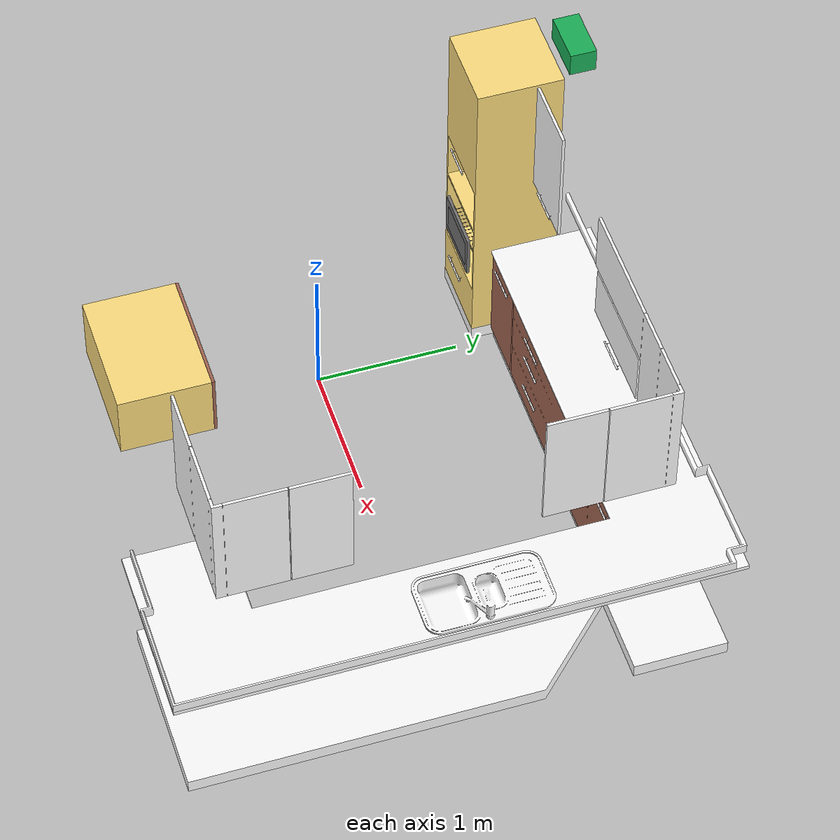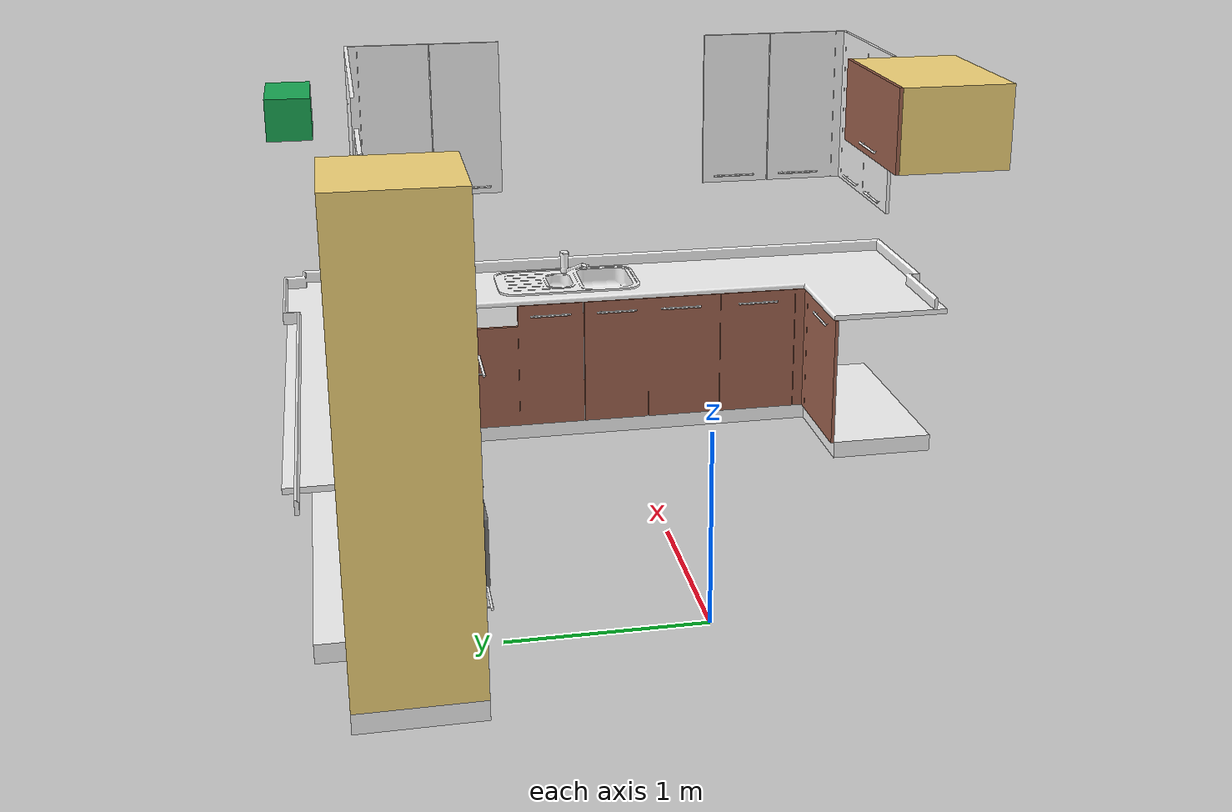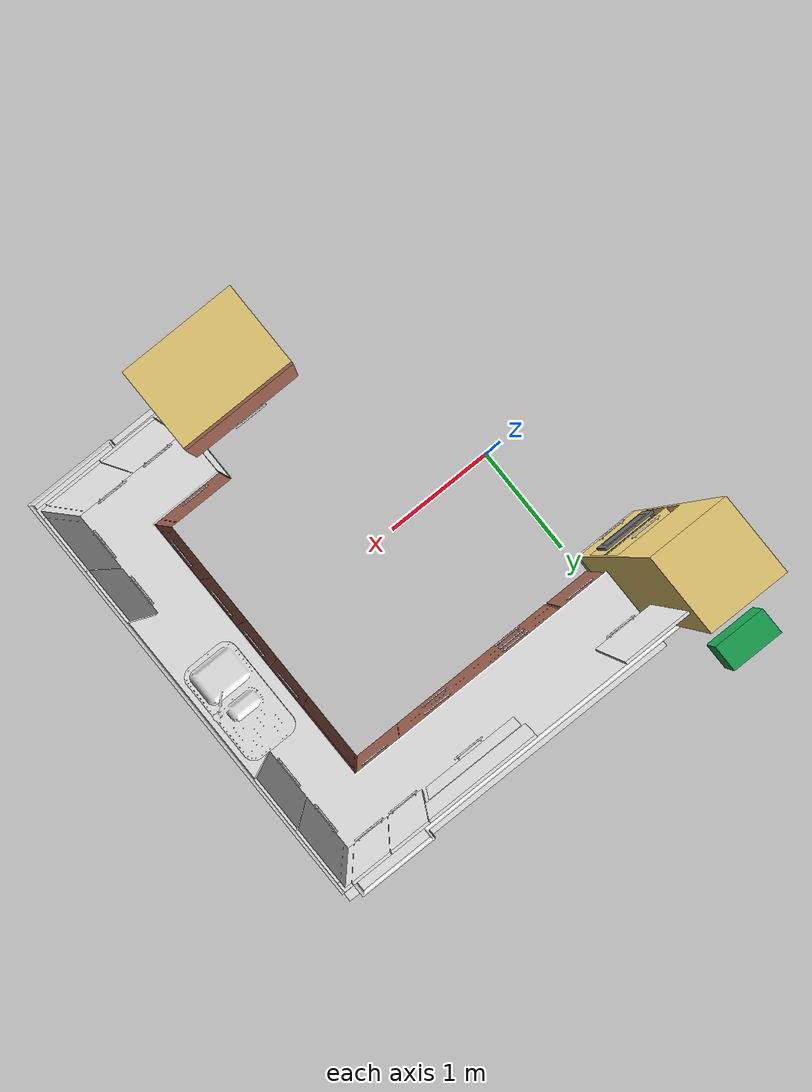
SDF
<sdf version="1.6">
 <world name="default">
  <model name="part114.obj">
   <static>1</static>
   <pose>-12.0 -13.9 0 0 0 0</pose>
   <link name="link_d114">
    <inertial>
     <mass>0</mass>
     <inertia>
      <ixx>0.166667</ixx>
      <ixy>0</ixy>
      <ixz>0</ixz>
      <iyy>0.166667</iyy>
      <iyz>0</iyz>
      <izz>0.166667</izz>
     </inertia>
    </inertial>
    <collision concave="yes" name="collision_114">
     <geometry><mesh><scale>.1 .1 .1</scale><uri>fatihrmutfak/part114.obj</uri></mesh></geometry>
    </collision>
    <visual name="visual">
     <geometry><mesh><scale>.1 .1 .1</scale><uri>fatihrmutfak/part114.obj</uri></mesh></geometry>
     <material>
      <ambient>1 0 0 1</ambient>
      <diffuse>0.647100 0.403900 0.321600 1</diffuse>
      <specular>0.1 0.1 0.1 1</specular>
      <emissive>0 0 0 0</emissive>
     </material>
    </visual>
   </link>
  </model>
  <model name="part115.obj">
   <static>1</static>
   <pose>-12.0 -13.9 0 0 0 0</pose>
   <link name="link_d115">
    <inertial>
     <mass>0</mass>
     <inertia>
      <ixx>0.166667</ixx>
      <ixy>0</ixy>
      <ixz>0</ixz>
      <iyy>0.166667</iyy>
      <iyz>0</iyz>
      <izz>0.166667</izz>
     </inertia>
    </inertial>
    <collision concave="yes" name="collision_115">
     <geometry><mesh><scale>.1 .1 .1</scale><uri>fatihrmutfak/part115.obj</uri></mesh></geometry>
    </collision>
    <visual name="visual">
     <geometry><mesh><scale>.1 .1 .1</scale><uri>fatihrmutfak/part115.obj</uri></mesh></geometry>
     <material>
      <ambient>1 0 0 1</ambient>
      <diffuse>1.000000 1.000000 1.000000 1</diffuse>
      <specular>0.1 0.1 0.1 1</specular>
      <emissive>0 0 0 0</emissive>
     </material>
    </visual>
   </link>
  </model>
  <model name="part116.obj">
   <static>1</static>
   <pose>-12.0 -13.9 0 0 0 0</pose>
   <link name="link_d116">
    <inertial>
     <mass>0</mass>
     <inertia>
      <ixx>0.166667</ixx>
      <ixy>0</ixy>
      <ixz>0</ixz>
      <iyy>0.166667</iyy>
      <iyz>0</iyz>
      <izz>0.166667</izz>
     </inertia>
    </inertial>
    <collision concave="yes" name="collision_116">
     <geometry><mesh><scale>.1 .1 .1</scale><uri>fatihrmutfak/part116.obj</uri></mesh></geometry>
    </collision>
    <visual name="visual">
     <geometry><mesh><scale>.1 .1 .1</scale><uri>fatihrmutfak/part116.obj</uri></mesh></geometry>
     <material>
      <ambient>1 0 0 1</ambient>
      <diffuse>1.000000 0.874500 0.498000 1</diffuse>
      <specular>0.1 0.1 0.1 1</specular>
      <emissive>0 0 0 0</emissive>
     </material>
    </visual>
   </link>
  </model>
  <model name="part117.obj">
   <static>1</static>
   <pose>-12.0 -13.9 0 0 0 0</pose>
   <link name="link_d117">
    <inertial>
     <mass>0</mass>
     <inertia>
      <ixx>0.166667</ixx>
      <ixy>0</ixy>
      <ixz>0</ixz>
      <iyy>0.166667</iyy>
      <iyz>0</iyz>
      <izz>0.166667</izz>
     </inertia>
    </inertial>
    <collision concave="yes" name="collision_117">
     <geometry><mesh><scale>.1 .1 .1</scale><uri>fatihrmutfak/part117.obj</uri></mesh></geometry>
    </collision>
    <visual name="visual">
     <geometry><mesh><scale>.1 .1 .1</scale><uri>fatihrmutfak/part117.obj</uri></mesh></geometry>
     <material>
      <ambient>1 0 0 1</ambient>
      <diffuse>1.000000 1.000000 1.000000 1</diffuse>
      <specular>0.1 0.1 0.1 1</specular>
      <emissive>0 0 0 0</emissive>
     </material>
    </visual>
   </link>
  </model>
  <model name="part118.obj">
   <static>1</static>
   <pose>-12.0 -13.9 0 0 0 0</pose>
   <link name="link_d118">
    <inertial>
     <mass>0</mass>
     <inertia>
      <ixx>0.166667</ixx>
      <ixy>0</ixy>
      <ixz>0</ixz>
      <iyy>0.166667</iyy>
      <iyz>0</iyz>
      <izz>0.166667</izz>
     </inertia>
    </inertial>
    <collision concave="yes" name="collision_118">
     <geometry><mesh><scale>.1 .1 .1</scale><uri>fatihrmutfak/part118.obj</uri></mesh></geometry>
    </collision>
    <visual name="visual">
     <geometry><mesh><scale>.1 .1 .1</scale><uri>fatihrmutfak/part118.obj</uri></mesh></geometry>
     <material>
      <ambient>1 0 0 1</ambient>
      <diffuse>1.000000 1.000000 1.000000 1</diffuse>
      <specular>0.1 0.1 0.1 1</specular>
      <emissive>0 0 0 0</emissive>
     </material>
    </visual>
   </link>
  </model>
  <model name="part119.obj">
   <static>1</static>
   <pose>-12.0 -13.9 0 0 0 0</pose>
   <link name="link_d119">
    <inertial>
     <mass>0</mass>
     <inertia>
      <ixx>0.166667</ixx>
      <ixy>0</ixy>
      <ixz>0</ixz>
      <iyy>0.166667</iyy>
      <iyz>0</iyz>
      <izz>0.166667</izz>
     </inertia>
    </inertial>
    <collision concave="yes" name="collision_119">
     <geometry><mesh><scale>.1 .1 .1</scale><uri>fatihrmutfak/part119.obj</uri></mesh></geometry>
    </collision>
    <visual name="visual">
     <geometry><mesh><scale>.1 .1 .1</scale><uri>fatihrmutfak/part119.obj</uri></mesh></geometry>
     <material>
      <ambient>1 0 0 1</ambient>
      <diffuse>0.647100 0.403900 0.321600 1</diffuse>
      <specular>0.1 0.1 0.1 1</specular>
      <emissive>0 0 0 0</emissive>
     </material>
    </visual>
   </link>
  </model>
  <model name="part120.obj">
   <static>1</static>
   <pose>-12.0 -13.9 0 0 0 0</pose>
   <link name="link_d120">
    <inertial>
     <mass>0</mass>
     <inertia>
      <ixx>0.166667</ixx>
      <ixy>0</ixy>
      <ixz>0</ixz>
      <iyy>0.166667</iyy>
      <iyz>0</iyz>
      <izz>0.166667</izz>
     </inertia>
    </inertial>
    <collision concave="yes" name="collision_120">
     <geometry><mesh><scale>.1 .1 .1</scale><uri>fatihrmutfak/part120.obj</uri></mesh></geometry>
    </collision>
    <visual name="visual">
     <geometry><mesh><scale>.1 .1 .1</scale><uri>fatihrmutfak/part120.obj</uri></mesh></geometry>
     <material>
      <ambient>1 0 0 1</ambient>
      <diffuse>1.000000 1.000000 1.000000 1</diffuse>
      <specular>0.1 0.1 0.1 1</specular>
      <emissive>0 0 0 0</emissive>
     </material>
    </visual>
   </link>
  </model>
  <model name="part121.obj">
   <static>1</static>
   <pose>-12.0 -13.9 0 0 0 0</pose>
   <link name="link_d121">
    <inertial>
     <mass>0</mass>
     <inertia>
      <ixx>0.166667</ixx>
      <ixy>0</ixy>
      <ixz>0</ixz>
      <iyy>0.166667</iyy>
      <iyz>0</iyz>
      <izz>0.166667</izz>
     </inertia>
    </inertial>
    <collision concave="yes" name="collision_121">
     <geometry><mesh><scale>.1 .1 .1</scale><uri>fatihrmutfak/part121.obj</uri></mesh></geometry>
    </collision>
    <visual name="visual">
     <geometry><mesh><scale>.1 .1 .1</scale><uri>fatihrmutfak/part121.obj</uri></mesh></geometry>
     <material>
      <ambient>1 0 0 1</ambient>
      <diffuse>1.000000 1.000000 1.000000 1</diffuse>
      <specular>0.1 0.1 0.1 1</specular>
      <emissive>0 0 0 0</emissive>
     </material>
    </visual>
   </link>
  </model>
  <model name="part122.obj">
   <static>1</static>
   <pose>-12.0 -13.9 0 0 0 0</pose>
   <link name="link_d122">
    <inertial>
     <mass>0</mass>
     <inertia>
      <ixx>0.166667</ixx>
      <ixy>0</ixy>
      <ixz>0</ixz>
      <iyy>0.166667</iyy>
      <iyz>0</iyz>
      <izz>0.166667</izz>
     </inertia>
    </inertial>
    <collision concave="yes" name="collision_122">
     <geometry><mesh><scale>.1 .1 .1</scale><uri>fatihrmutfak/part122.obj</uri></mesh></geometry>
    </collision>
    <visual name="visual">
     <geometry><mesh><scale>.1 .1 .1</scale><uri>fatihrmutfak/part122.obj</uri></mesh></geometry>
     <material>
      <ambient>1 0 0 1</ambient>
      <diffuse>1.000000 1.000000 1.000000 1</diffuse>
      <specular>0.1 0.1 0.1 1</specular>
      <emissive>0 0 0 0</emissive>
     </material>
    </visual>
   </link>
  </model>
  <model name="part123.obj">
   <static>1</static>
   <pose>-12.0 -13.9 0 0 0 0</pose>
   <link name="link_d123">
    <inertial>
     <mass>0</mass>
     <inertia>
      <ixx>0.166667</ixx>
      <ixy>0</ixy>
      <ixz>0</ixz>
      <iyy>0.166667</iyy>
      <iyz>0</iyz>
      <izz>0.166667</izz>
     </inertia>
    </inertial>
    <collision concave="yes" name="collision_123">
     <geometry><mesh><scale>.1 .1 .1</scale><uri>fatihrmutfak/part123.obj</uri></mesh></geometry>
    </collision>
    <visual name="visual">
     <geometry><mesh><scale>.1 .1 .1</scale><uri>fatihrmutfak/part123.obj</uri></mesh></geometry>
     <material>
      <ambient>1 0 0 1</ambient>
      <diffuse>1.000000 1.000000 1.000000 1</diffuse>
      <specular>0.1 0.1 0.1 1</specular>
      <emissive>0 0 0 0</emissive>
     </material>
    </visual>
   </link>
  </model>
  <model name="part124.obj">
   <static>1</static>
   <pose>-12.0 -13.9 0 0 0 0</pose>
   <link name="link_d124">
    <inertial>
     <mass>0</mass>
     <inertia>
      <ixx>0.166667</ixx>
      <ixy>0</ixy>
      <ixz>0</ixz>
      <iyy>0.166667</iyy>
      <iyz>0</iyz>
      <izz>0.166667</izz>
     </inertia>
    </inertial>
    <collision concave="yes" name="collision_124">
     <geometry><mesh><scale>.1 .1 .1</scale><uri>fatihrmutfak/part124.obj</uri></mesh></geometry>
    </collision>
    <visual name="visual">
     <geometry><mesh><scale>.1 .1 .1</scale><uri>fatihrmutfak/part124.obj</uri></mesh></geometry>
     <material>
      <ambient>1 0 0 1</ambient>
      <diffuse>1.000000 1.000000 1.000000 1</diffuse>
      <specular>0.1 0.1 0.1 1</specular>
      <emissive>0 0 0 0</emissive>
     </material>
    </visual>
   </link>
  </model>
  <model name="part125.obj">
   <static>1</static>
   <pose>-12.0 -13.9 0 0 0 0</pose>
   <link name="link_d125">
    <inertial>
     <mass>0</mass>
     <inertia>
      <ixx>0.166667</ixx>
      <ixy>0</ixy>
      <ixz>0</ixz>
      <iyy>0.166667</iyy>
      <iyz>0</iyz>
      <izz>0.166667</izz>
     </inertia>
    </inertial>
    <collision concave="yes" name="collision_125">
     <geometry><mesh><scale>.1 .1 .1</scale><uri>fatihrmutfak/part125.obj</uri></mesh></geometry>
    </collision>
    <visual name="visual">
     <geometry><mesh><scale>.1 .1 .1</scale><uri>fatihrmutfak/part125.obj</uri></mesh></geometry>
     <material>
      <ambient>1 0 0 1</ambient>
      <diffuse>0.102000 0.694100 0.345100 1</diffuse>
      <specular>0.1 0.1 0.1 1</specular>
      <emissive>0 0 0 0</emissive>
     </material>
    </visual>
   </link>
  </model>
  <model name="part126.obj">
   <static>1</static>
   <pose>-12.0 -13.9 0 0 0 0</pose>
   <link name="link_d126">
    <inertial>
     <mass>0</mass>
     <inertia>
      <ixx>0.166667</ixx>
      <ixy>0</ixy>
      <ixz>0</ixz>
      <iyy>0.166667</iyy>
      <iyz>0</iyz>
      <izz>0.166667</izz>
     </inertia>
    </inertial>
    <collision concave="yes" name="collision_126">
     <geometry><mesh><scale>.1 .1 .1</scale><uri>fatihrmutfak/part126.obj</uri></mesh></geometry>
    </collision>
    <visual name="visual">
     <geometry><mesh><scale>.1 .1 .1</scale><uri>fatihrmutfak/part126.obj</uri></mesh></geometry>
     <material>
      <ambient>1 0 0 1</ambient>
      <diffuse>0.451000 0.451000 0.451000 1</diffuse>
      <specular>0.1 0.1 0.1 1</specular>
      <emissive>0 0 0 0</emissive>
     </material>
    </visual>
   </link>
  </model>
  <model name="part127.obj">
   <static>1</static>
   <pose>-12.0 -13.9 0 0 0 0</pose>
   <link name="link_d127">
    <inertial>
     <mass>0</mass>
     <inertia>
      <ixx>0.166667</ixx>
      <ixy>0</ixy>
      <ixz>0</ixz>
      <iyy>0.166667</iyy>
      <iyz>0</iyz>
      <izz>0.166667</izz>
     </inertia>
    </inertial>
    <collision concave="yes" name="collision_127">
     <geometry><mesh><scale>.1 .1 .1</scale><uri>fatihrmutfak/part127.obj</uri></mesh></geometry>
    </collision>
    <visual name="visual">
     <geometry><mesh><scale>.1 .1 .1</scale><uri>fatihrmutfak/part127.obj</uri></mesh></geometry>
     <material>
      <ambient>1 0 0 1</ambient>
      <diffuse>0.451000 0.451000 0.451000 1</diffuse>
      <specular>0.1 0.1 0.1 1</specular>
      <emissive>0 0 0 0</emissive>
     </material>
    </visual>
   </link>
  </model>
  <model name="part128.obj">
   <static>1</static>
   <pose>-12.0 -13.9 0 0 0 0</pose>
   <link name="link_d128">
    <inertial>
     <mass>0</mass>
     <inertia>
      <ixx>0.166667</ixx>
      <ixy>0</ixy>
      <ixz>0</ixz>
      <iyy>0.166667</iyy>
      <iyz>0</iyz>
      <izz>0.166667</izz>
     </inertia>
    </inertial>
    <collision concave="yes" name="collision_128">
     <geometry><mesh><scale>.1 .1 .1</scale><uri>fatihrmutfak/part128.obj</uri></mesh></geometry>
    </collision>
    <visual name="visual">
     <geometry><mesh><scale>.1 .1 .1</scale><uri>fatihrmutfak/part128.obj</uri></mesh></geometry>
     <material>
      <ambient>1 0 0 1</ambient>
      <diffuse>0.451000 0.451000 0.451000 1</diffuse>
      <specular>0.1 0.1 0.1 1</specular>
      <emissive>0 0 0 0</emissive>
     </material>
    </visual>
   </link>
  </model>
  <model name="part129.obj">
   <static>1</static>
   <pose>-12.0 -13.9 0 0 0 0</pose>
   <link name="link_d129">
    <inertial>
     <mass>0</mass>
     <inertia>
      <ixx>0.166667</ixx>
      <ixy>0</ixy>
      <ixz>0</ixz>
      <iyy>0.166667</iyy>
      <iyz>0</iyz>
      <izz>0.166667</izz>
     </inertia>
    </inertial>
    <collision concave="yes" name="collision_129">
     <geometry><mesh><scale>.1 .1 .1</scale><uri>fatihrmutfak/part129.obj</uri></mesh></geometry>
    </collision>
    <visual name="visual">
     <geometry><mesh><scale>.1 .1 .1</scale><uri>fatihrmutfak/part129.obj</uri></mesh></geometry>
     <material>
      <ambient>1 0 0 1</ambient>
      <diffuse>0.451000 0.451000 0.451000 1</diffuse>
      <specular>0.1 0.1 0.1 1</specular>
      <emissive>0 0 0 0</emissive>
     </material>
    </visual>
   </link>
  </model>
 </world>
</sdf>
